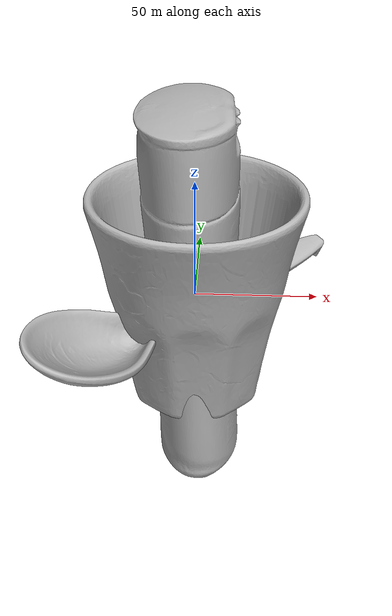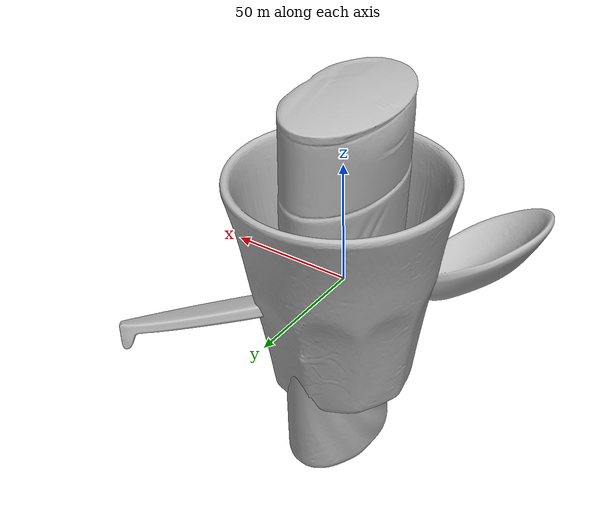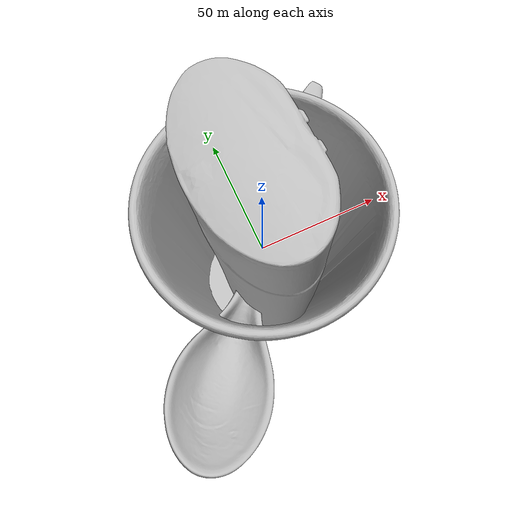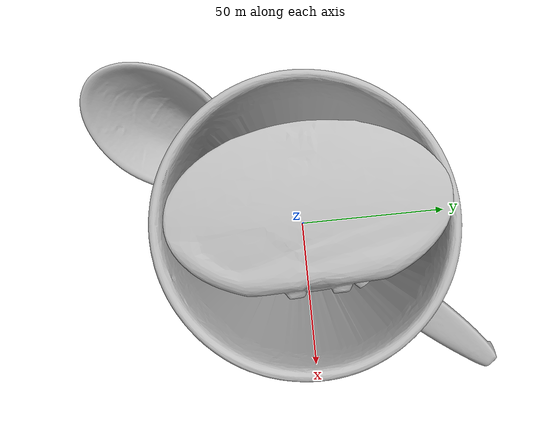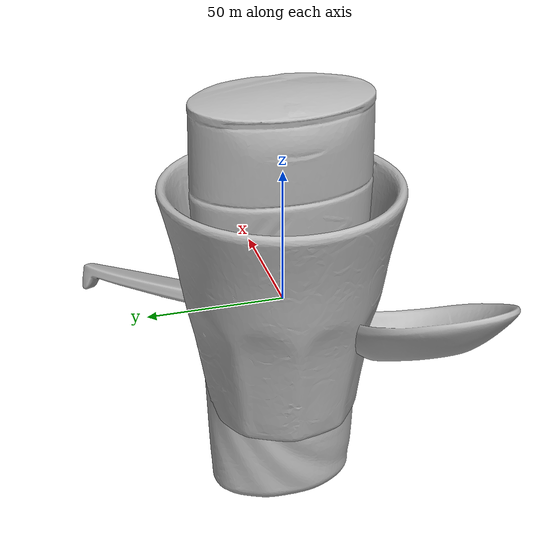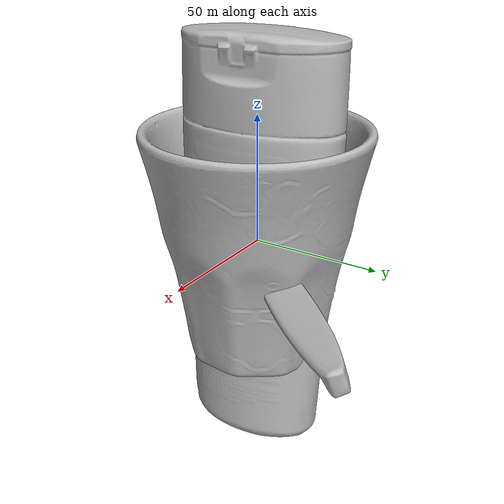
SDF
<sdf version="1.4">
 <world name="default">
  <light name="light1" type="point">
   <pose>0 0 1 0 0 0</pose>
   <diffuse>3 3 3 1</diffuse>
   <specular>3 3 3 1</specular>
  </light>
  <light name="light2" type="point">
   <pose>0 0.5 2 0 0 0</pose>
   <diffuse>1 1 1 1</diffuse>
   <specular>1 1 1 1</specular>
  </light>
  <light name="light3" type="point">
   <pose>0 0.5 2 0 0 0</pose>
   <diffuse>3 3 3 1</diffuse>
   <specular>3 3 3 1</specular>
  </light>
  <scene><ambient>0.7 0.7 0.7</ambient></scene>
  <model name="bottle1">
   <link name="link_bottle1">
    <collision name="default">
     <geometry>
      <mesh><uri>model://pure_zhen/collision_meshes/collision.obj</uri><scale>1.0 1.0 1.0</scale></mesh>
     </geometry>
     <surface>
      <friction><ode><mu>0.5</mu><mu2>0.5</mu2></ode></friction>
      <contact><ode><max_vel>0</max_vel><min_depth>0.0001</min_depth><kp>1e8</kp></ode></contact>
     </surface>
    </collision>
    <visual name="default">
     <geometry>
      <mesh><uri>model://pure_zhen/visual_meshes/visual.dae</uri><scale>1.0 1.0 1.0</scale></mesh>
     </geometry>
    </visual>
    <inertial>
     <mass>0.21128538250923157</mass>
     <pose>-8.582300506532192e-05 0.0002452346670906991 -0.0015797390369698405 -0.027642443229877835 0.005619248866174896 0.3057200614584077</pose>
     <inertia>
      <ixx>0.00063332287</ixx>
      <iyy>0.00063348823</iyy>
      <izz>6.6904315e-05</izz>
      <ixy>0</ixy>
      <ixz>0</ixz>
      <iyz>0</iyz>
     </inertia>
    </inertial>
   </link>
   <pose>0.04065736383199692 -0.19878076016902924 0.091948501765728 0.019489528636616134 -0.01608997016562356 -2.5261216518364003</pose>
  </model>
  <model name="bottle2">
   <link name="link_bottle2">
    <collision name="default">
     <geometry>
      <mesh><uri>model://conditioner/collision_meshes/collision.obj</uri><scale>1.0 1.0 1.0</scale></mesh>
     </geometry>
     <surface>
      <friction><ode><mu>0.5</mu><mu2>0.5</mu2></ode></friction>
      <contact><ode><max_vel>0</max_vel><min_depth>0.0001</min_depth><kp>1e8</kp></ode></contact>
     </surface>
    </collision>
    <visual name="default">
     <geometry>
      <mesh><uri>model://conditioner/visual_meshes/visual.dae</uri><scale>1.0 1.0 1.0</scale></mesh>
     </geometry>
    </visual>
    <inertial>
     <mass>0.3611464500427246</mass>
     <pose>-0.00055994390277192 -0.0001729748910292983 0.004359682556241751 -0.005038374424784669 0.01530604350153207 0.015072341368129788</pose>
     <inertia>
      <ixx>0.00078562286</ixx>
      <iyy>0.0008415716</iyy>
      <izz>0.00012113213</izz>
      <ixy>0</ixy>
      <ixz>0</ixz>
      <iyz>0</iyz>
     </inertia>
    </inertial>
   </link>
   <pose>-0.08276122063398361 0.02658938616514206 0.08122974634170532 0.03688843393991499 -0.015657244021614156 -1.5614360336813071</pose>
  </model>
  <model name="silverware1">
   <link name="link_silverware1">
    <collision name="default">
     <geometry>
      <mesh><uri>model://doraemon_spoon/collision_meshes/collision.obj</uri><scale>1.0 1.0 1.0</scale></mesh>
     </geometry>
     <surface>
      <friction><ode><mu>0.5</mu><mu2>0.5</mu2></ode></friction>
      <contact><ode><max_vel>0</max_vel><min_depth>0.0001</min_depth><kp>1e8</kp></ode></contact>
     </surface>
    </collision>
    <visual name="default">
     <geometry>
      <mesh><uri>model://doraemon_spoon/visual_meshes/visual.dae</uri><scale>1.0 1.0 1.0</scale></mesh>
     </geometry>
    </visual>
    <inertial>
     <mass>0.02099660225212574</mass>
     <pose>-0.02216508239507675 -0.0006374581134878099 -0.003332545980811119 -0.009147162014623967 0.07380421234862718 -0.01412382746948542</pose>
     <inertia>
      <ixx>1.6446534e-06</ixx>
      <iyy>4.671061e-05</iyy>
      <izz>4.7504738e-05</izz>
      <ixy>0</ixy>
      <ixz>0</ixz>
      <iyz>0</iyz>
     </inertia>
    </inertial>
   </link>
   <pose>0.20284083485603333 -0.3123576045036316 0.014739356935024261 0.27879490082300357 -0.010334592703725744 0.8533880184512486</pose>
  </model>
  <model name="stationery1">
   <link name="link_stationery1">
    <collision name="default">
     <geometry>
      <mesh><uri>model://correction_fuid/collision_meshes/collision.obj</uri><scale>1.0 1.0 1.0</scale></mesh>
     </geometry>
     <surface>
      <friction><ode><mu>0.5</mu><mu2>0.5</mu2></ode></friction>
      <contact><ode><max_vel>0</max_vel><min_depth>0.0001</min_depth><kp>1e8</kp></ode></contact>
     </surface>
    </collision>
    <visual name="default">
     <geometry>
      <mesh><uri>model://correction_fuid/visual_meshes/visual.dae</uri><scale>1.0 1.0 1.0</scale></mesh>
     </geometry>
    </visual>
    <inertial>
     <mass>0.046645622700452805</mass>
     <pose>-0.00012557735317386687 -0.0009722909890115261 -0.001618212671019137 -0.010846607840907904 0.019488357502694276 -0.015992455488392</pose>
     <inertia>
      <ixx>4.5177083e-05</ixx>
      <iyy>2.7341744e-06</iyy>
      <izz>4.635291e-05</izz>
      <ixy>0</ixy>
      <ixz>0</ixz>
      <iyz>0</iyz>
     </inertia>
    </inertial>
   </link>
   <pose>0.10241959989070892 0.159246563911438 0.009632834233343601 -0.0017272047384845773 -0.05616744564288371 -1.7508839704052068</pose>
  </model>
  <model name="bowl1">
   <link name="link_bowl1">
    <collision name="default">
     <geometry>
      <mesh><uri>model://doraemon_bowl/collision_meshes/collision.obj</uri><scale>1.0 1.0 1.0</scale></mesh>
     </geometry>
     <surface>
      <friction><ode><mu>0.5</mu><mu2>0.5</mu2></ode></friction>
      <contact><ode><max_vel>0</max_vel><min_depth>0.0001</min_depth><kp>1e8</kp></ode></contact>
     </surface>
    </collision>
    <visual name="default">
     <geometry>
      <mesh><uri>model://doraemon_bowl/visual_meshes/visual.dae</uri><scale>1.0 1.0 1.0</scale></mesh>
     </geometry>
    </visual>
    <inertial>
     <mass>0.11811670660972595</mass>
     <pose>-0.014629551209509373 0.0004857121384702623 -0.0020864885300397873 -0.00509396228069995 -0.10568398533611668 -0.02642645986873745</pose>
     <inertia>
      <ixx>0.00016378764</ixx>
      <iyy>0.00021554313</iyy>
      <izz>0.00031711452</izz>
      <ixy>0</ixy>
      <ixz>0</ixz>
      <iyz>0</iyz>
     </inertia>
    </inertial>
   </link>
   <pose>0.21346713602542877 -0.0043421536684036255 0.025905461981892586 0.00859533818330634 0.006344020959747428 2.9206231784101795</pose>
  </model>
  <model name="cup1">
   <link name="link_cup1">
    <collision name="default">
     <geometry>
      <mesh><uri>model://hello_kitty_cup/collision_meshes/collision.obj</uri><scale>1.0 1.0 1.0</scale></mesh>
     </geometry>
     <surface>
      <friction><ode><mu>0.5</mu><mu2>0.5</mu2></ode></friction>
      <contact><ode><max_vel>0</max_vel><min_depth>0.0001</min_depth><kp>1e8</kp></ode></contact>
     </surface>
    </collision>
    <visual name="default">
     <geometry>
      <mesh><uri>model://hello_kitty_cup/visual_meshes/visual.dae</uri><scale>1.0 1.0 1.0</scale></mesh>
     </geometry>
    </visual>
    <inertial>
     <mass>0.06522195786237717</mass>
     <pose>0.00027251147548668087 0.0002795039035845548 0.003044978016987443 0.05779148941225366 0.007964866585370347 -0.020452001862605422</pose>
     <inertia>
      <ixx>8.981858e-05</ixx>
      <iyy>9.081978e-05</iyy>
      <izz>7.573251e-05</izz>
      <ixy>0</ixy>
      <ixz>0</ixz>
      <iyz>0</iyz>
     </inertia>
    </inertial>
   </link>
   <pose>0.123122937977314 0.3552187383174896 0.04621625691652298 -0.005878425107730577 0.01079617407427211 -0.8758552581599769</pose>
  </model>
  <model name="plate1">
   <link name="link_plate1">
    <collision name="default">
     <geometry>
      <mesh><uri>model://hello_kitty_plate/collision_meshes/collision.obj</uri><scale>1.0 1.0 1.0</scale></mesh>
     </geometry>
     <surface>
      <friction><ode><mu>0.5</mu><mu2>0.5</mu2></ode></friction>
      <contact><ode><max_vel>0</max_vel><min_depth>0.0001</min_depth><kp>1e8</kp></ode></contact>
     </surface>
    </collision>
    <visual name="default">
     <geometry>
      <mesh><uri>model://hello_kitty_plate/visual_meshes/visual.dae</uri><scale>1.0 1.0 1.0</scale></mesh>
     </geometry>
    </visual>
    <inertial>
     <mass>0.08260300010442734</mass>
     <pose>0.0073142931796610355 0.0002893725468311459 -0.0027947169728577137 -0.00010432002488368626 -0.007054440417891238 -0.014449022362072891</pose>
     <inertia>
      <ixx>0.0001592833</ixx>
      <iyy>0.00030061565</iyy>
      <izz>0.0004564546</izz>
      <ixy>0</ixy>
      <ixz>0</ixz>
      <iyz>0</iyz>
     </inertia>
    </inertial>
   </link>
   <pose>0.19639930129051208 0.22433523833751678 0.008291334845125675 0.00046567858530048925 0.004171765615672602 -0.34890026049643996</pose>
  </model>
  <model name="box4">
   <link name="link_box4">
    <collision name="default">
     <geometry>
      <mesh><uri>model://wooden_puzzle1/collision_meshes/collision.obj</uri><scale>1.0 1.0 1.0</scale></mesh>
     </geometry>
     <surface>
      <friction><ode><mu>0.5</mu><mu2>0.5</mu2></ode></friction>
      <contact><ode><max_vel>0</max_vel><min_depth>0.0001</min_depth><kp>1e8</kp></ode></contact>
     </surface>
    </collision>
    <visual name="default">
     <geometry>
      <mesh><uri>model://wooden_puzzle1/visual_meshes/visual.dae</uri><scale>1.0 1.0 1.0</scale></mesh>
     </geometry>
    </visual>
    <inertial>
     <mass>0.034562814980745316</mass>
     <pose>-0.0001735068071866408 7.97226166469045e-05 -9.191555000143126e-05 -0.07784459827727222 -0.2636103773563706 -0.5528705263726328</pose>
     <inertia>
      <ixx>6.5210584e-06</ixx>
      <iyy>6.395525e-06</iyy>
      <izz>6.471823e-06</izz>
      <ixy>0</ixy>
      <ixz>0</ixz>
      <iyz>0</iyz>
     </inertia>
    </inertial>
   </link>
   <pose>0.17636126279830933 -0.059023261070251465 0.016802024096250534 0.010511716840371613 -0.00945422389407512 -2.3414133205891554</pose>
  </model>
  <physics type="ode">
   <max_contacts>50</max_contacts>
   <ode>
    <solver><type>quick</type><iters>75</iters></solver>
    <constraints>
     <contact_max_correcting_vel>0</contact_max_correcting_vel>
     <contact_surface_layer>0</contact_surface_layer>
    </constraints>
   </ode>
  </physics>
 </world>
</sdf>
